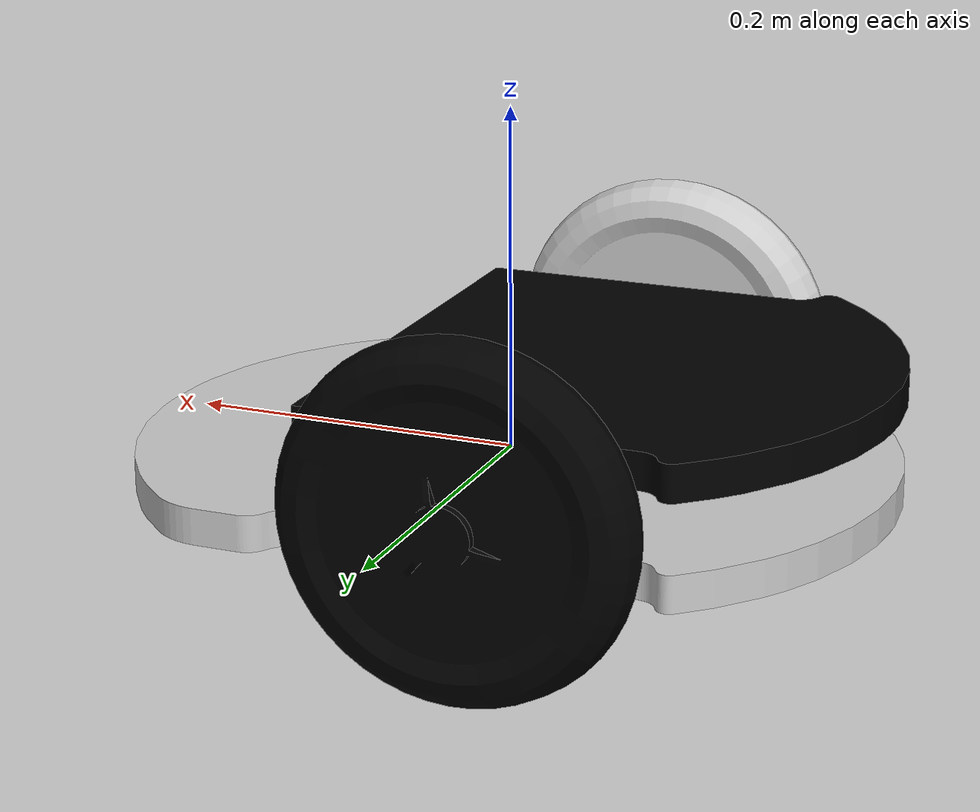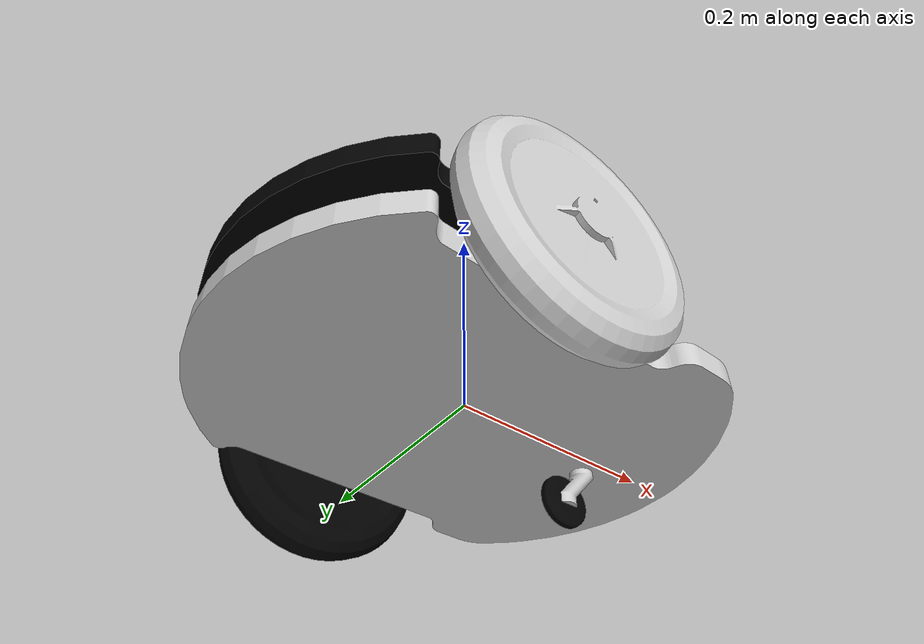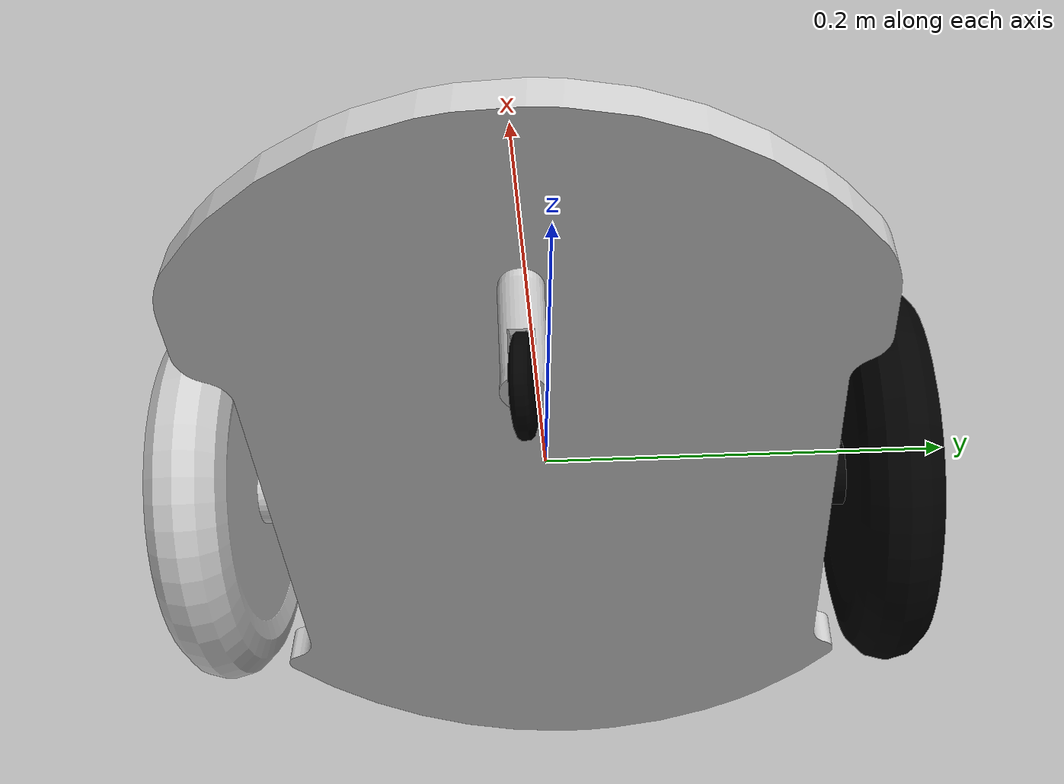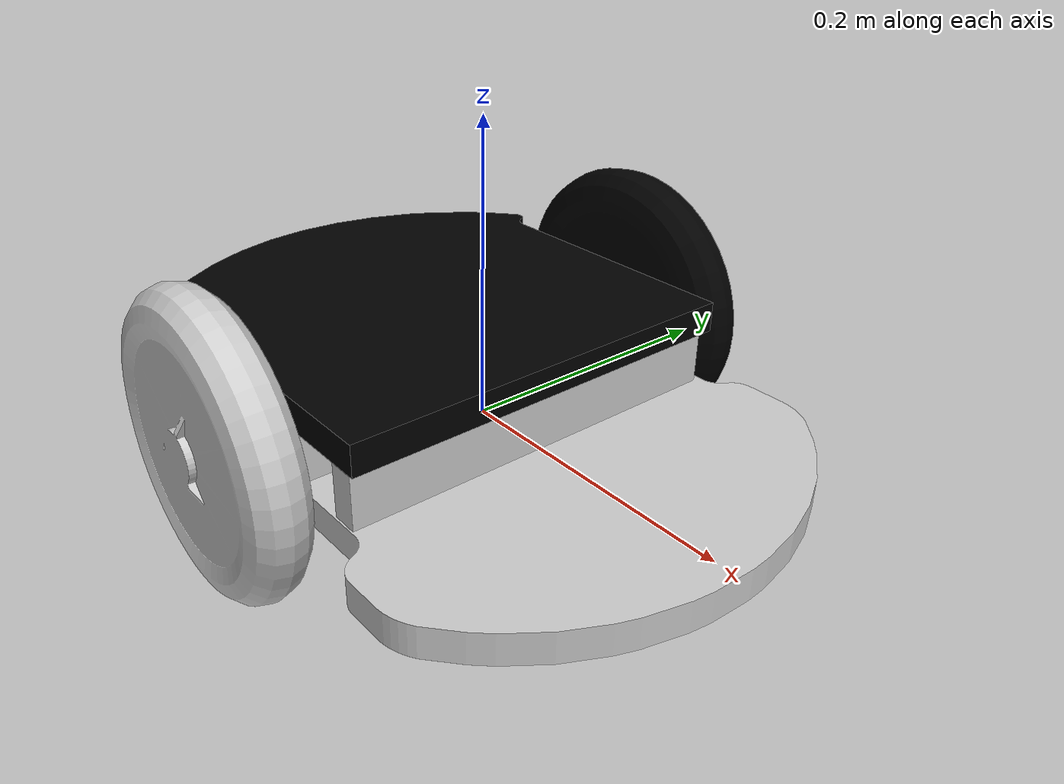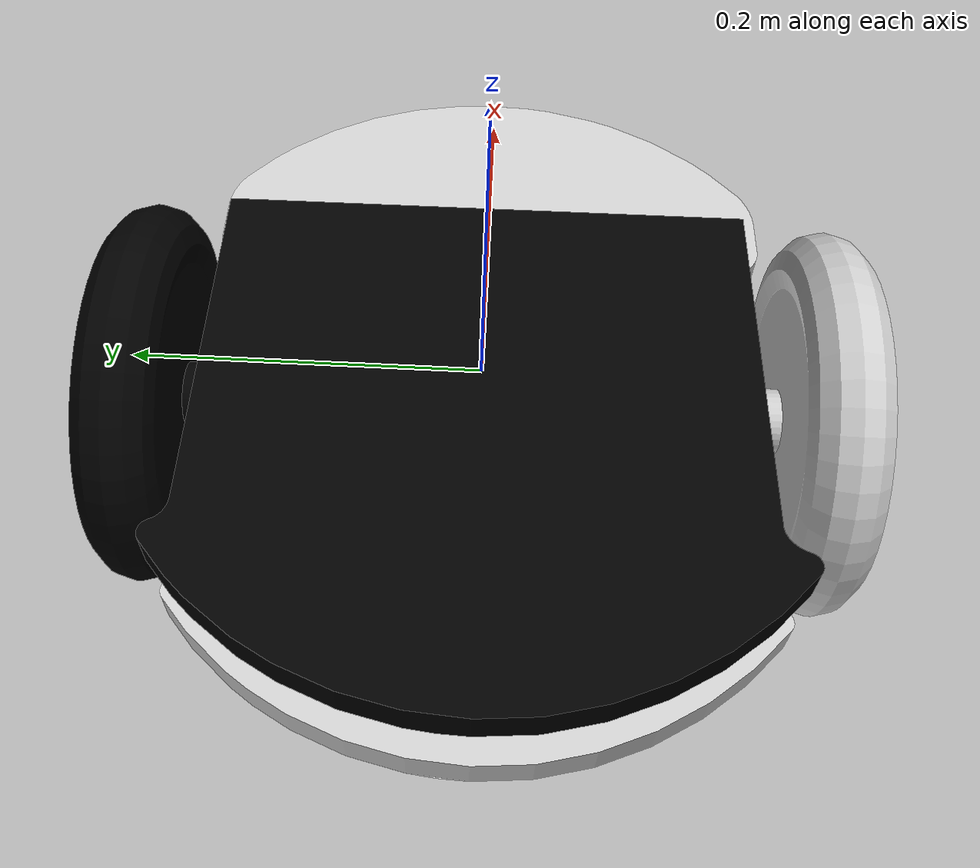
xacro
<?xml version="1.0"?>

  <robot name="ddmr1" xmlns:xacro="http://www.ros.org/wiki/xacro">
    <xacro:include filename="$(find ddmr_description)/urdf/ddmr.gazebo" />

    <link name="link_chassis_botom">
      <inertial>
        <origin xyz="0 0 0" rpy="0 0 0"/>
        <mass value="0.8"/>
        <inertia ixx="0.00336" ixy="0" ixz="0" iyy="0.00517" iyz="0" izz="0.00824"/>
      </inertial>
      <visual name="chassis_botom">
        <origin xyz="0 0 0" rpy="0 0 0"/>
        <geometry>
          <mesh filename="package://ddmr_description/meshes/dae/chassis_botom.dae" scale="1.0 1.0 1.0"/>
        </geometry>
        <material name="white_mat"/>
      </visual>
      <collision name="chassis_botom_col">
        <origin xyz="-0.00406 -4e-05 0.01198" rpy="0 0 0"/>
        <geometry>
          <box size="0.44516 0.32757 0.05975"/>
        </geometry>
      </collision>
    </link>

    <link name="link_chassis_top">
      <inertial>
        <origin xyz="0 0 0" rpy="0 0 0"/>
        <mass value="0.1"/>
        <inertia ixx="0.00135" ixy="0" ixz="0" iyy="0.00238" iyz="0" izz="0.00372"/>
      </inertial>
      <visual name="chassis_top">
        <origin xyz="0 0 0" rpy="0 0 0"/>
        <geometry>
          <mesh filename="package://ddmr_description/meshes/dae/chassis_top.dae" scale="1.0 1.0 1.0"/>
        </geometry>
        <material name="black_mat"/>
      </visual>
      <collision name="chassis_top_col">
        <origin xyz="-0.01362 -0.00255 0" rpy="0 0 0"/>
        <geometry>
          <box size="0.29395 0.31545 0.02122"/>
        </geometry>
      </collision>
    </link>

    <link name="link_front_wheel">
      <inertial>
        <origin xyz="0 0 0" rpy="0 0 0"/>
        <mass value="0.01"/>
        <inertia ixx="2e-05" ixy="0" ixz="0" iyy="2e-05" iyz="0" izz="2e-05"/>
      </inertial>
      <visual name="front_wheel">
        <origin xyz="0 0 0" rpy="-1.5708 0 0"/>
        <geometry>
          <mesh filename="package://ddmr_description/meshes/dae/front_wheel.dae" scale="1.0 1.0 1.0"/>
        </geometry>
        <material name="black_mat"/>
      </visual>
      <collision name="front_wheel_col">
        <origin xyz="0 0 0" rpy="0 0 0"/>
        <geometry>
          <cylinder radius="0.02339" length="0.01153"/>
        </geometry>
      </collision>
    </link>

    <link name="link_front_wheel_holder">
      <inertial>
        <origin xyz="-0.02896 0 -0.01695" rpy="0 0 0"/>
        <mass value="0.02"/>
        <inertia ixx="2e-05" ixy="0" ixz="0" iyy="2e-05" iyz="0" izz="2e-05"/>
      </inertial>
      <visual name="front_wheel_holder">
        <origin xyz="-0.01448 0 -0.00847" rpy="0 0 0"/>
        <geometry>
          <mesh filename="package://ddmr_description/meshes/dae/front_wheel_holder.dae" scale="1.0 1.0 1.0"/>
        </geometry>
        <material name="white_mat"/>
      </visual>
      <collision name="front_wheel_holder_col">
        <origin xyz="-0.01374 0 -0.00965" rpy="0 0 0"/>
        <geometry>
          <box size="0.04293 0.02094 0.04259"/>
        </geometry>
      </collision>
    </link>

    <link name="link_left_wheel">
      <inertial>
        <origin xyz="0 0 0" rpy="0 0 0"/>
        <mass value="0.2"/>
        <inertia ixx="0.00027" ixy="0" ixz="0" iyy="0.00052" iyz="0" izz="0.00027"/>
      </inertial>
      <visual name="right_wheel">
        <origin xyz="0 0 0" rpy="-1.5708 0 0"/>
        <geometry>
          <mesh filename="package://ddmr_description/meshes/dae/left_wheel.dae" scale="1.0 1.0 1.0"/>
        </geometry>
        <material name="black_mat"/>
      </visual>
      <collision name="left_wheel_col">
        <origin xyz="0 0 0.00368" rpy="0 0 0"/>
        <geometry>
          <cylinder radius="0.10072" length="0.05208"/>
        </geometry>
      </collision>
    </link>

    <link name="link_right_wheel">
      <inertial>
        <origin xyz="0 0 0" rpy="0 0 0"/>
        <mass value="0.11"/>
        <inertia ixx="0.00027" ixy="0" ixz="0" iyy="0.00052" iyz="0" izz="0.00027"/>
      </inertial>
      <visual name="right_wheel">
        <origin xyz="0 0 0" rpy="-1.5708 0 0"/>
        <geometry>
          <mesh filename="package://ddmr_description/meshes/dae/right_wheel.dae" scale="1.0 1.0 1.0"/>
        </geometry>
        <material name="white_mat"/>
      </visual>
      <collision name="right_wheel_col">
        <origin xyz="0 0 -0.00368" rpy="0 0 0"/>
        <geometry>
          <cylinder radius="0.10072" length="0.05208"/>
        </geometry>
      </collision>
    </link>

    <joint name="joint_chassis_top" type="fixed">
      <origin xyz="-0.06605 0 0.05247" rpy="0 0 0"/>
      <parent link="link_chassis_botom"/>
      <child link="link_chassis_top"/>
    </joint>

    <joint name="joint_front_wheel" type="continuous">
      <origin xyz="-0.02717 0.00013 -0.02589" rpy="1.5708 0 0"/>
      <parent link="link_front_wheel_holder"/>
      <child link="link_front_wheel"/>
      <axis xyz="0 0 1.0"/>
      <limit effort="1000.0" velocity="1000.0"/>
    </joint>

    <joint name="joint_front_wheel_holder" type="continuous">
      <origin xyz="0.13221 -0.0007 -0.02813" rpy="0 0 0"/>
      <parent link="link_chassis_botom"/>
      <child link="link_front_wheel_holder"/>
      <axis xyz="0 0 1.0"/>
      <limit effort="1000.0" velocity="1000.0"/>
    </joint>

    <joint name="joint_left_wheel" type="continuous">
      <origin xyz="-0.04 0.17354 0.022" rpy="1.5708 0 0"/>
      <parent link="link_chassis_botom"/>
      <child link="link_left_wheel"/>
      <axis xyz="0 0 -1.0"/>
      <limit effort="1000.0" velocity="1000.0"/>
    </joint>

    <joint name="joint_right_wheel" type="continuous">
      <origin xyz="-0.04 -0.17415 0.022" rpy="1.5708 0 0"/>
      <parent link="link_chassis_botom"/>
      <child link="link_right_wheel"/>
      <axis xyz="0 0 -1.0"/>
      <limit effort="1000.0" velocity="1000.0"/>
    </joint>

    <material name="black_mat">
      <color rgba="0 0 0 1.0"/>
    </material>

    <material name="white_mat">
      <color rgba="0.8 0.8 0.8 1.0"/>
    </material>

  </robot>
